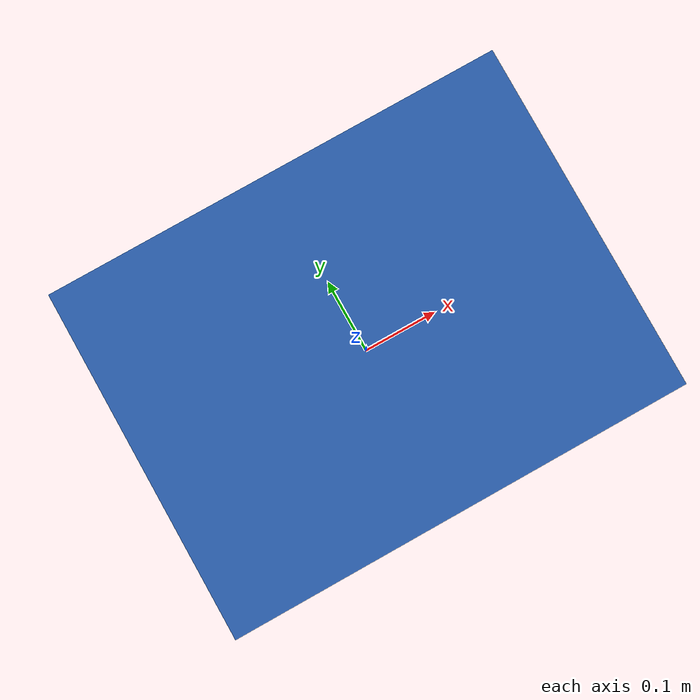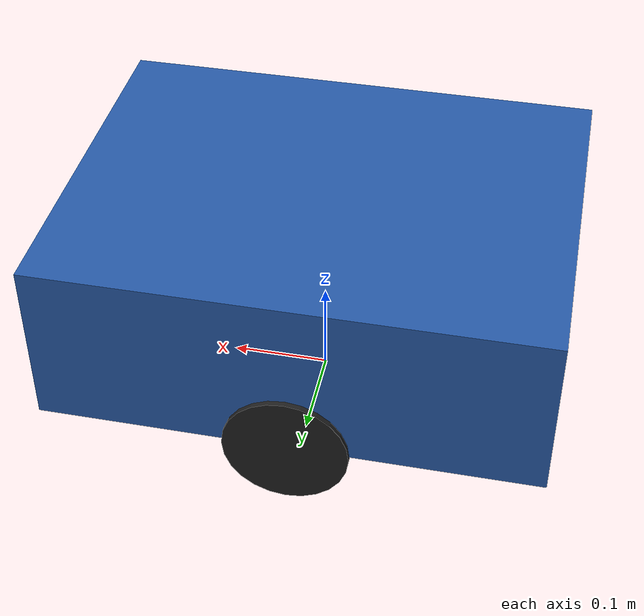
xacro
<?xml version="1.0"?>
<robot name="pi5_stm32_robot" xmlns:xacro="http://ros.org/wiki/xacro">
  <xacro:arg name="wheel_radius" default="0.062455"/>
  <xacro:arg name="wheel_separation" default="0.345"/>
  <xacro:arg name="wheel_width" default="0.046"/>
  <xacro:arg name="base_length" default="0.50"/>
  <xacro:arg name="base_width" default="0.38"/>
  <xacro:arg name="base_height" default="0.17498881"/>
  <xacro:arg name="imu_xyz" default="0 0 0"/>
  <xacro:arg name="imu_rpy" default="0 0 0"/>
  <xacro:arg name="laser_xyz" default="0.223 0 0.1915"/>
  <xacro:arg name="laser_rpy" default="0 0 0"/>
  <xacro:property name="radius" value="$(arg wheel_radius)"/>
  <xacro:property name="separation" value="$(arg wheel_separation)"/>
  <xacro:property name="height" value="$(arg base_height)"/>
  <material name="chassis"><color rgba="0.15 0.35 0.65 1"/></material>
  <material name="wheel"><color rgba="0.12 0.12 0.12 1"/></material>
  <link name="base_footprint"/>
  <link name="base_link">
    <visual>
      <origin xyz="0 0 ${height / 2}"/>
      <geometry><box size="$(arg base_length) $(arg base_width) $(arg base_height)"/></geometry>
      <material name="chassis"/>
    </visual>
  </link>
  <joint name="base_joint" type="fixed">
    <parent link="base_footprint"/><child link="base_link"/>
    <origin xyz="0 0 ${radius}"/>
  </joint>
  <xacro:macro name="wheel_joint" params="side sign">
    <link name="${side}_wheel_link">
      <visual><origin rpy="${pi / 2} 0 0"/>
        <geometry><cylinder radius="${radius}" length="$(arg wheel_width)"/></geometry>
        <material name="wheel"/>
      </visual>
    </link>
    <joint name="${side}_wheel_joint" type="continuous">
      <parent link="base_link"/><child link="${side}_wheel_link"/>
      <origin xyz="0 ${sign * separation / 2} 0"/><axis xyz="0 1 0"/>
    </joint>
  </xacro:macro>
  <xacro:wheel_joint side="left" sign="${1}"/>
  <xacro:wheel_joint side="right" sign="${-1}"/>
  <link name="imu_link"/>
  <joint name="imu_joint" type="fixed">
    <parent link="base_link"/><child link="imu_link"/>
    <origin xyz="$(arg imu_xyz)" rpy="$(arg imu_rpy)"/>
  </joint>
  <link name="laser"/>
  <joint name="laser_joint" type="fixed">
    <parent link="base_link"/><child link="laser"/>
    <origin xyz="$(arg laser_xyz)" rpy="$(arg laser_rpy)"/>
  </joint>
</robot>
